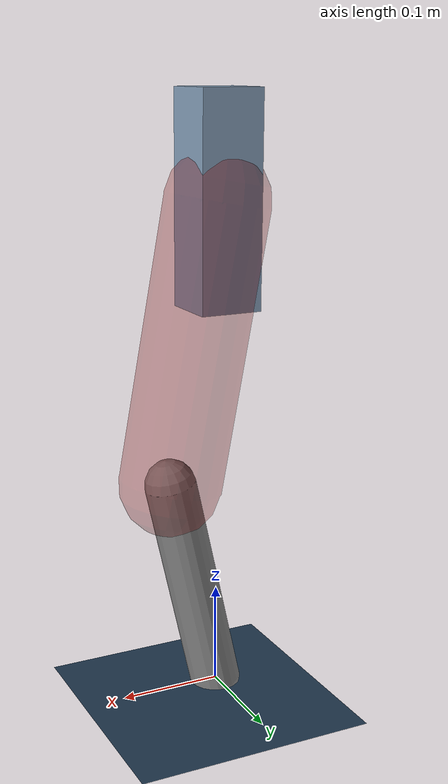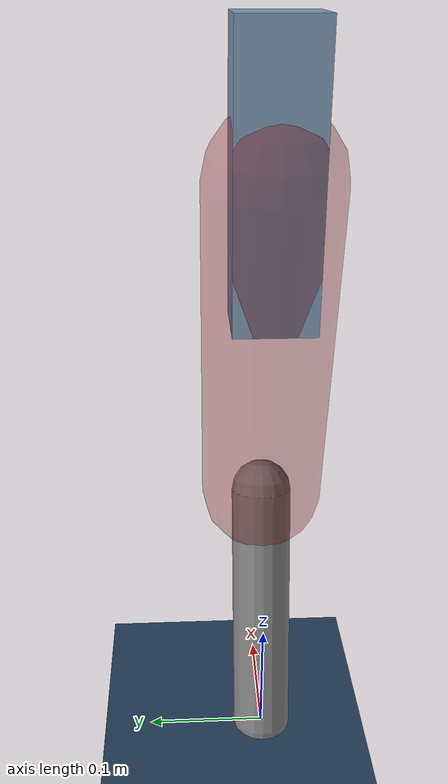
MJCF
<mujoco model="Hopper2D">
	<compiler inertiafromgeom="true" angle="radian" />
	<option timestep="0.001" integrator="implicit" cone="elliptic" solver="Newton" tolerance="1e-10" />

	<default>
		<geom contype="1" conaffinity="1" condim="3" friction="2 0.005 0.0001" solref="0.005 1" />
		<joint limited="true" damping="0.1" />
	</default>

	<asset>
		<texture name="skybox" type="skybox" builtin="gradient" rgb1=".4 .6 .8" rgb2="0 0 0" width="800" height="800" />
		<texture name="grid" type="2d" builtin="checker" rgb1=".1 .2 .3" rgb2=".2 .3 .4" width="300" height="300" mark="edge" markrgb=".2 .3 .4" />
		<material name="ground" texture="grid" texrepeat="1 1" texuniform="true" reflectance="0.1" />
		<material name="leg" rgba="0.5 0.6 0.7 1" />
	</asset>

	<worldbody>

		<geom name="floor" type="plane" size="5 5 0.25" material="ground" />

		<light directional="false" diffuse="0.8 0.8 0.8" specular="0.3 0.3 0.3" pos="0 0 2" dir="0 0 -1" />
		<light mode="targetbodycom" target="base" directional="false" diffuse="0.8 0.8 0.8" specular="0.3 0.3 0.3" pos="0 0 2" dir="0 0 -1" />

		<camera name="fixed" pos="0 -2 1" xyaxes="1 0 0 0 0 1" />
		<camera name="tracking" mode="trackcom" pos="0 -3 1" />

		<body name="root" pos="0 0 0.4840425755456071">
			<joint name="slide_x" type="slide" axis="1 0 0" range="-100 100" />
			<joint name="slide_z" type="slide" axis="0 0 1" range="0 10" />

			<body name="base" pos="0 0 0">
				<geom name="torso" type="box" size="0.03 0.03 0.1" mass="3.74" material="leg" />

				<body name="link1" pos="0 0 0" euler="0 1.3886144850645241 0">
					<joint type="hinge" axis="0 -1 0" pos="0 0 0" name="hinge1" limited="true" range="-3.14 3.14" stiffness="0" damping="0.1" />
					<geom name="thigh" type="capsule" fromto="0 0 0 0.27153120523056484 0 0" size="0.05" rgba="0.5 0 0 0.3" mass="0.9126811335994686" />

					<body name="link2" pos="0.27153120523056484 0 0" euler="0 0.4051130333645594 0">
						<joint type="hinge" axis="0 -1 0" pos="0 0 0" name="hinge2" limited="true" range="-3.14 3.14" stiffness="0" damping="0.1" />
						<geom name="shank" type="capsule" fromto="0 0 0 0.22251137031504226 0 0" size="0.025" mass="0.41976023328353806" />

					</body>
				</body>
			</body>
		</body>
	</worldbody>

	<actuator>
		<motor name="torque1" joint="hinge1" ctrlrange="-134.67614392034451 134.67614392034451" ctrllimited="true" gear="1" />
		<motor name="torque2" joint="hinge2" ctrlrange="-145.17136024681247 145.17136024681247" ctrllimited="true" gear="1" />
	</actuator>
</mujoco>
